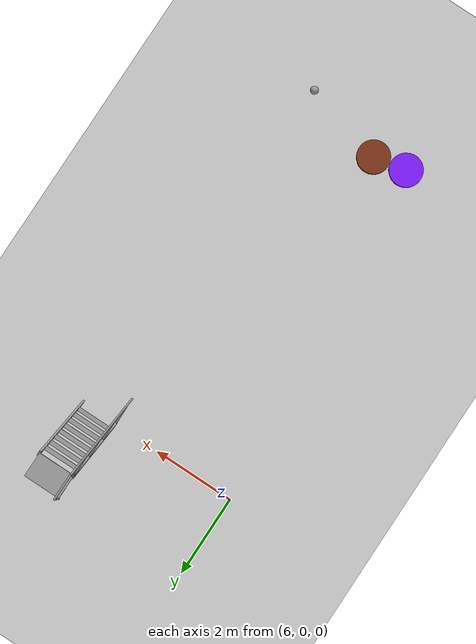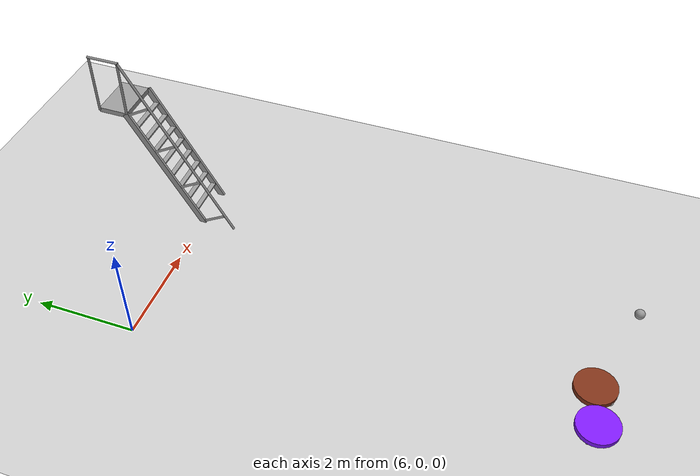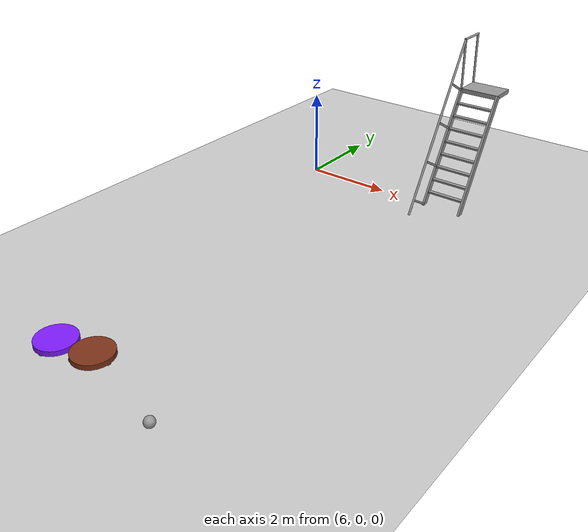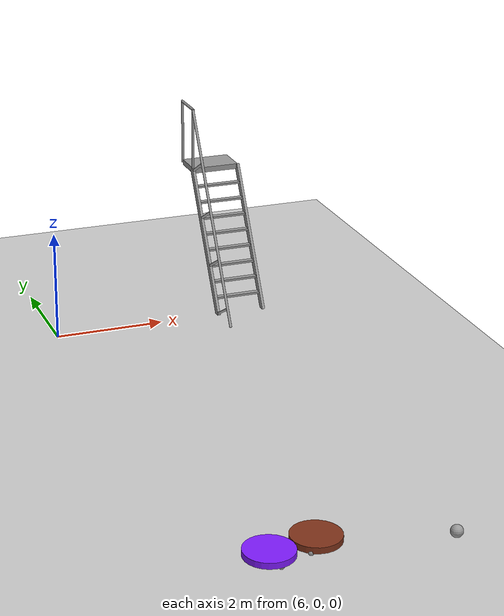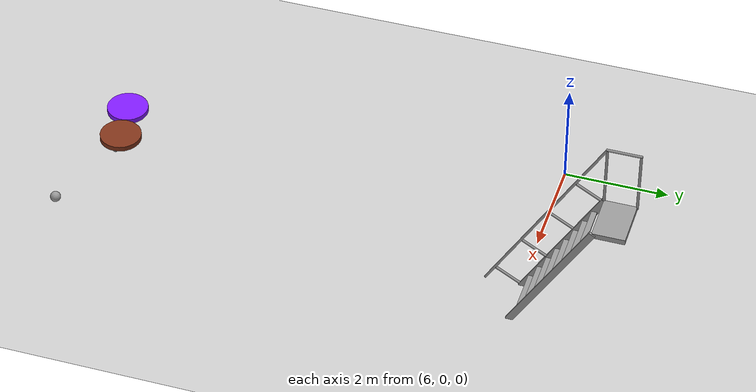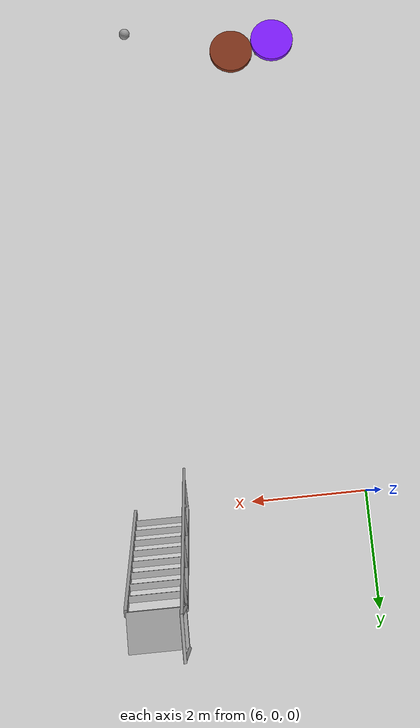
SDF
<sdf version="1.6">
 <world name="default">
  <model name="ground_plane">
   <static>1</static>
   <link name="link">
    <collision name="collision">
     <geometry><plane><normal>0 0 1</normal><size>100 100</size></plane></geometry>
     <surface><friction><ode><mu>100</mu><mu2>50</mu2></ode></friction></surface>
    </collision>
    <visual name="visual">
     <cast_shadows>0</cast_shadows>
     <geometry><plane><normal>0 0 1</normal><size>100 100</size></plane></geometry>
     <material>
      <script><uri>file://media/materials/scripts/gazebo.material</uri><name>Gazebo/Grey</name></script>
     </material>
    </visual>
   </link>
  </model>
  <model name="myrobot">
   <link name="link_0">
    <pose>-0.004537 0.01028 0.0375 0 -0 0</pose>
    <inertial>
     <mass>1</mass>
     <inertia><ixx>0.145833</ixx><ixy>0</ixy><ixz>0</ixz><iyy>0.145833</iyy><iyz>0</iyz><izz>0.125</izz></inertia>
    </inertial>
    <visual name="visual">
     <geometry><cylinder><radius>0.4</radius><length>0.1</length></cylinder></geometry>
     <material>
      <lighting>1</lighting>
      <script><uri>file://media/materials/scripts/gazebo.material</uri><name>Gazebo/Grey</name></script>
      <ambient>0.8 0.6 0.2 0.8</ambient>
      <diffuse>0.5 0.2 0.1 1</diffuse>
      <specular>0.01 0.01 0.01 1</specular>
      <emissive>0 0 0 1</emissive>
      <shader type="vertex"><normal_map>__default__</normal_map></shader>
     </material>
    </visual>
    <collision name="collision">
     <geometry><cylinder><radius>0.4</radius><length>0.1</length></cylinder></geometry>
     <surface>
      <friction>
       <ode><mu>1</mu><mu2>1</mu2><fdir1>0 0 0</fdir1><slip1>0</slip1><slip2>0</slip2></ode>
       <torsional>
        <coefficient>1</coefficient>
        <patch_radius>0</patch_radius>
        <surface_radius>0</surface_radius>
        <use_patch_radius>1</use_patch_radius>
        <ode><slip>0</slip></ode>
       </torsional>
      </friction>
      <bounce><restitution_coefficient>0</restitution_coefficient><threshold>1e+06</threshold></bounce>
      <contact>
       <collide_without_contact>0</collide_without_contact>
       <collide_without_contact_bitmask>1</collide_without_contact_bitmask>
       <collide_bitmask>1</collide_bitmask>
       <ode>
        <soft_cfm>0</soft_cfm>
        <soft_erp>0.2</soft_erp>
        <kp>1e+13</kp>
        <kd>1</kd>
        <max_vel>0.01</max_vel>
        <min_depth>0</min_depth>
       </ode>
       <bullet>
        <split_impulse>1</split_impulse>
        <split_impulse_penetration_threshold>-0.01</split_impulse_penetration_threshold>
        <soft_cfm>0</soft_cfm>
        <soft_erp>0.2</soft_erp>
        <kp>1e+13</kp>
        <kd>1</kd>
       </bullet>
      </contact>
     </surface>
    </collision>
   </link>
   <link name="link_1">
    <pose>-0.004537 -0.329719 -0.0125 0 -0 0</pose>
    <inertial>
     <mass>1</mass>
     <inertia><ixx>0.1</ixx><ixy>0</ixy><ixz>0</ixz><iyy>0.1</iyy><iyz>0</iyz><izz>0.1</izz></inertia>
    </inertial>
    <visual name="visual">
     <geometry><sphere><radius>0.05</radius></sphere></geometry>
     <material>
      <lighting>1</lighting>
      <script><uri>file://media/materials/scripts/gazebo.material</uri><name>Gazebo/Grey</name></script>
      <ambient>0.3 0.3 0.3 1</ambient>
      <diffuse>0.7 0.7 0.7 1</diffuse>
      <specular>0.01 0.01 0.01 1</specular>
      <emissive>0 0 0 1</emissive>
      <shader type="vertex"><normal_map>__default__</normal_map></shader>
     </material>
    </visual>
    <collision name="collision">
     <geometry><sphere><radius>0.05</radius></sphere></geometry>
     <surface>
      <friction>
       <ode><mu>1</mu><mu2>1</mu2><fdir1>0 0 0</fdir1><slip1>0</slip1><slip2>0</slip2></ode>
       <torsional>
        <coefficient>1</coefficient>
        <patch_radius>0</patch_radius>
        <surface_radius>0</surface_radius>
        <use_patch_radius>1</use_patch_radius>
        <ode><slip>0</slip></ode>
       </torsional>
      </friction>
      <bounce><restitution_coefficient>0</restitution_coefficient><threshold>1e+06</threshold></bounce>
      <contact>
       <collide_without_contact>0</collide_without_contact>
       <collide_without_contact_bitmask>1</collide_without_contact_bitmask>
       <collide_bitmask>1</collide_bitmask>
       <ode>
        <soft_cfm>0</soft_cfm>
        <soft_erp>0.2</soft_erp>
        <kp>1e+13</kp>
        <kd>1</kd>
        <max_vel>0.01</max_vel>
        <min_depth>0</min_depth>
       </ode>
       <bullet>
        <split_impulse>1</split_impulse>
        <split_impulse_penetration_threshold>-0.01</split_impulse_penetration_threshold>
        <soft_cfm>0</soft_cfm>
        <soft_erp>0.2</soft_erp>
        <kp>1e+13</kp>
        <kd>1</kd>
       </bullet>
      </contact>
     </surface>
    </collision>
   </link>
   <link name="link_1_clone">
    <pose>0.324443 0.160282 -0.0125 0 -0 0</pose>
    <inertial>
     <mass>1</mass>
     <inertia><ixx>0.1</ixx><ixy>0</ixy><ixz>0</ixz><iyy>0.1</iyy><iyz>0</iyz><izz>0.1</izz></inertia>
    </inertial>
    <visual name="visual">
     <geometry><sphere><radius>0.05</radius></sphere></geometry>
     <material>
      <lighting>1</lighting>
      <script><uri>file://media/materials/scripts/gazebo.material</uri><name>Gazebo/Grey</name></script>
      <ambient>0.3 0.3 0.3 1</ambient>
      <diffuse>0.7 0.7 0.7 1</diffuse>
      <specular>0.01 0.01 0.01 1</specular>
      <emissive>0 0 0 1</emissive>
      <shader type="vertex"><normal_map>__default__</normal_map></shader>
     </material>
    </visual>
    <collision name="collision">
     <geometry><sphere><radius>0.05</radius></sphere></geometry>
     <surface>
      <friction>
       <ode><mu>1</mu><mu2>1</mu2><fdir1>0 0 0</fdir1><slip1>0</slip1><slip2>0</slip2></ode>
       <torsional>
        <coefficient>1</coefficient>
        <patch_radius>0</patch_radius>
        <surface_radius>0</surface_radius>
        <use_patch_radius>1</use_patch_radius>
        <ode><slip>0</slip></ode>
       </torsional>
      </friction>
      <bounce><restitution_coefficient>0</restitution_coefficient><threshold>1e+06</threshold></bounce>
      <contact>
       <collide_without_contact>0</collide_without_contact>
       <collide_without_contact_bitmask>1</collide_without_contact_bitmask>
       <collide_bitmask>1</collide_bitmask>
       <ode>
        <soft_cfm>0</soft_cfm>
        <soft_erp>0.2</soft_erp>
        <kp>1e+13</kp>
        <kd>1</kd>
        <max_vel>0.01</max_vel>
        <min_depth>0</min_depth>
       </ode>
       <bullet>
        <split_impulse>1</split_impulse>
        <split_impulse_penetration_threshold>-0.01</split_impulse_penetration_threshold>
        <soft_cfm>0</soft_cfm>
        <soft_erp>0.2</soft_erp>
        <kp>1e+13</kp>
        <kd>1</kd>
       </bullet>
      </contact>
     </surface>
    </collision>
   </link>
   <link name="link_1_clone_clone">
    <pose>-0.315368 0.169158 -0.0125 0 -0 0</pose>
    <inertial>
     <mass>1</mass>
     <inertia><ixx>0.1</ixx><ixy>0</ixy><ixz>0</ixz><iyy>0.1</iyy><iyz>0</iyz><izz>0.1</izz></inertia>
    </inertial>
    <visual name="visual">
     <geometry><sphere><radius>0.05</radius></sphere></geometry>
     <material>
      <lighting>1</lighting>
      <script><uri>file://media/materials/scripts/gazebo.material</uri><name>Gazebo/Grey</name></script>
      <ambient>0.3 0.3 0.3 1</ambient>
      <diffuse>0.7 0.7 0.7 1</diffuse>
      <specular>0.01 0.01 0.01 1</specular>
      <emissive>0 0 0 1</emissive>
      <shader type="vertex"><normal_map>__default__</normal_map></shader>
     </material>
    </visual>
    <collision name="collision">
     <geometry><sphere><radius>0.05</radius></sphere></geometry>
     <surface>
      <friction>
       <ode><mu>1</mu><mu2>1</mu2><fdir1>0 0 0</fdir1><slip1>0</slip1><slip2>0</slip2></ode>
       <torsional>
        <coefficient>1</coefficient>
        <patch_radius>0</patch_radius>
        <surface_radius>0</surface_radius>
        <use_patch_radius>1</use_patch_radius>
        <ode><slip>0</slip></ode>
       </torsional>
      </friction>
      <bounce><restitution_coefficient>0</restitution_coefficient><threshold>1e+06</threshold></bounce>
      <contact>
       <collide_without_contact>0</collide_without_contact>
       <collide_without_contact_bitmask>1</collide_without_contact_bitmask>
       <collide_bitmask>1</collide_bitmask>
       <ode>
        <soft_cfm>0</soft_cfm>
        <soft_erp>0.2</soft_erp>
        <kp>1e+13</kp>
        <kd>1</kd>
        <max_vel>0.01</max_vel>
        <min_depth>0</min_depth>
       </ode>
       <bullet>
        <split_impulse>1</split_impulse>
        <split_impulse_penetration_threshold>-0.01</split_impulse_penetration_threshold>
        <soft_cfm>0</soft_cfm>
        <soft_erp>0.2</soft_erp>
        <kp>1e+13</kp>
        <kd>1</kd>
       </bullet>
      </contact>
     </surface>
    </collision>
   </link>
   <joint name="link_0_JOINT_0" type="ball">
    <parent>link_0</parent>
    <child>link_1</child>
    <physics>
     <ode><limit><cfm>0</cfm><erp>0.2</erp></limit><suspension><cfm>0</cfm><erp>0.2</erp></suspension></ode>
    </physics>
   </joint>
   <joint name="link_0_JOINT_1" type="ball">
    <parent>link_0</parent>
    <child>link_1_clone</child>
    <physics>
     <ode><limit><cfm>0</cfm><erp>0.2</erp></limit><suspension><cfm>0</cfm><erp>0.2</erp></suspension></ode>
    </physics>
   </joint>
   <joint name="link_0_JOINT_2" type="ball">
    <parent>link_0</parent>
    <child>link_1_clone_clone</child>
    <physics>
     <ode><limit><cfm>0</cfm><erp>0.2</erp></limit><suspension><cfm>0</cfm><erp>0.2</erp></suspension></ode>
    </physics>
   </joint>
   <static>0</static>
   <pose>7.57179 -8.35948 0.0625 0 0 -2.58755</pose>
  </model>
  <model name="myrobot_0">
   <link name="link_0">
    <pose>-0.004537 0.01028 0.0375 0 -0 0</pose>
    <inertial>
     <mass>1</mass>
     <inertia><ixx>0.145833</ixx><ixy>0</ixy><ixz>0</ixz><iyy>0.145833</iyy><iyz>0</iyz><izz>0.125</izz></inertia>
    </inertial>
    <visual name="visual">
     <geometry><cylinder><radius>0.4</radius><length>0.1</length></cylinder></geometry>
     <material>
      <lighting>1</lighting>
      <script><uri>file://media/materials/scripts/gazebo.material</uri><name>Gazebo/Grey</name></script>
      <ambient>0.5 0.1 1 1</ambient>
      <diffuse>0.7 0.7 0.7 1</diffuse>
      <specular>0.01 0.01 0.01 1</specular>
      <emissive>0 0 0 1</emissive>
      <shader type="vertex"><normal_map>__default__</normal_map></shader>
     </material>
    </visual>
    <collision name="collision">
     <geometry><cylinder><radius>0.4</radius><length>0.1</length></cylinder></geometry>
     <surface>
      <friction>
       <ode><mu>1</mu><mu2>1</mu2><fdir1>0 0 0</fdir1><slip1>0</slip1><slip2>0</slip2></ode>
       <torsional>
        <coefficient>1</coefficient>
        <patch_radius>0</patch_radius>
        <surface_radius>0</surface_radius>
        <use_patch_radius>1</use_patch_radius>
        <ode><slip>0</slip></ode>
       </torsional>
      </friction>
      <bounce><restitution_coefficient>0</restitution_coefficient><threshold>1e+06</threshold></bounce>
      <contact>
       <collide_without_contact>0</collide_without_contact>
       <collide_without_contact_bitmask>1</collide_without_contact_bitmask>
       <collide_bitmask>1</collide_bitmask>
       <ode>
        <soft_cfm>0</soft_cfm>
        <soft_erp>0.2</soft_erp>
        <kp>1e+13</kp>
        <kd>1</kd>
        <max_vel>0.01</max_vel>
        <min_depth>0</min_depth>
       </ode>
       <bullet>
        <split_impulse>1</split_impulse>
        <split_impulse_penetration_threshold>-0.01</split_impulse_penetration_threshold>
        <soft_cfm>0</soft_cfm>
        <soft_erp>0.2</soft_erp>
        <kp>1e+13</kp>
        <kd>1</kd>
       </bullet>
      </contact>
     </surface>
    </collision>
   </link>
   <link name="link_1">
    <pose>-0.004537 -0.339719 -0.0125 0 -0 0</pose>
    <inertial>
     <mass>1</mass>
     <inertia><ixx>0.1</ixx><ixy>0</ixy><ixz>0</ixz><iyy>0.1</iyy><iyz>0</iyz><izz>0.1</izz></inertia>
    </inertial>
    <visual name="visual">
     <geometry><sphere><radius>0.05</radius></sphere></geometry>
     <material>
      <lighting>1</lighting>
      <script><uri>file://media/materials/scripts/gazebo.material</uri><name>Gazebo/Grey</name></script>
      <ambient>0.3 0.3 0.3 1</ambient>
      <diffuse>0.7 0.7 0.7 1</diffuse>
      <specular>0.01 0.01 0.01 1</specular>
      <emissive>0 0 0 1</emissive>
      <shader type="vertex"><normal_map>__default__</normal_map></shader>
     </material>
    </visual>
    <collision name="collision">
     <geometry><sphere><radius>0.05</radius></sphere></geometry>
     <surface>
      <friction>
       <ode><mu>1</mu><mu2>1</mu2><fdir1>0 0 0</fdir1><slip1>0</slip1><slip2>0</slip2></ode>
       <torsional>
        <coefficient>1</coefficient>
        <patch_radius>0</patch_radius>
        <surface_radius>0</surface_radius>
        <use_patch_radius>1</use_patch_radius>
        <ode><slip>0</slip></ode>
       </torsional>
      </friction>
      <bounce><restitution_coefficient>0</restitution_coefficient><threshold>1e+06</threshold></bounce>
      <contact>
       <collide_without_contact>0</collide_without_contact>
       <collide_without_contact_bitmask>1</collide_without_contact_bitmask>
       <collide_bitmask>1</collide_bitmask>
       <ode>
        <soft_cfm>0</soft_cfm>
        <soft_erp>0.2</soft_erp>
        <kp>1e+13</kp>
        <kd>1</kd>
        <max_vel>0.01</max_vel>
        <min_depth>0</min_depth>
       </ode>
       <bullet>
        <split_impulse>1</split_impulse>
        <split_impulse_penetration_threshold>-0.01</split_impulse_penetration_threshold>
        <soft_cfm>0</soft_cfm>
        <soft_erp>0.2</soft_erp>
        <kp>1e+13</kp>
        <kd>1</kd>
       </bullet>
      </contact>
     </surface>
    </collision>
   </link>
   <link name="link_1_clone">
    <pose>0.324443 0.160282 -0.0125 0 -0 0</pose>
    <inertial>
     <mass>1</mass>
     <inertia><ixx>0.1</ixx><ixy>0</ixy><ixz>0</ixz><iyy>0.1</iyy><iyz>0</iyz><izz>0.1</izz></inertia>
    </inertial>
    <visual name="visual">
     <geometry><sphere><radius>0.05</radius></sphere></geometry>
     <material>
      <lighting>1</lighting>
      <script><uri>file://media/materials/scripts/gazebo.material</uri><name>Gazebo/Grey</name></script>
      <ambient>0.3 0.3 0.3 1</ambient>
      <diffuse>0.7 0.7 0.7 1</diffuse>
      <specular>0.01 0.01 0.01 1</specular>
      <emissive>0 0 0 1</emissive>
      <shader type="vertex"><normal_map>__default__</normal_map></shader>
     </material>
    </visual>
    <collision name="collision">
     <geometry><sphere><radius>0.05</radius></sphere></geometry>
     <surface>
      <friction>
       <ode><mu>1</mu><mu2>1</mu2><fdir1>0 0 0</fdir1><slip1>0</slip1><slip2>0</slip2></ode>
       <torsional>
        <coefficient>1</coefficient>
        <patch_radius>0</patch_radius>
        <surface_radius>0</surface_radius>
        <use_patch_radius>1</use_patch_radius>
        <ode><slip>0</slip></ode>
       </torsional>
      </friction>
      <bounce><restitution_coefficient>0</restitution_coefficient><threshold>1e+06</threshold></bounce>
      <contact>
       <collide_without_contact>0</collide_without_contact>
       <collide_without_contact_bitmask>1</collide_without_contact_bitmask>
       <collide_bitmask>1</collide_bitmask>
       <ode>
        <soft_cfm>0</soft_cfm>
        <soft_erp>0.2</soft_erp>
        <kp>1e+13</kp>
        <kd>1</kd>
        <max_vel>0.01</max_vel>
        <min_depth>0</min_depth>
       </ode>
       <bullet>
        <split_impulse>1</split_impulse>
        <split_impulse_penetration_threshold>-0.01</split_impulse_penetration_threshold>
        <soft_cfm>0</soft_cfm>
        <soft_erp>0.2</soft_erp>
        <kp>1e+13</kp>
        <kd>1</kd>
       </bullet>
      </contact>
     </surface>
    </collision>
   </link>
   <link name="link_1_clone_clone">
    <pose>-0.315368 0.169158 -0.0125 0 -0 0</pose>
    <inertial>
     <mass>1</mass>
     <inertia><ixx>0.1</ixx><ixy>0</ixy><ixz>0</ixz><iyy>0.1</iyy><iyz>0</iyz><izz>0.1</izz></inertia>
    </inertial>
    <visual name="visual">
     <geometry><sphere><radius>0.05</radius></sphere></geometry>
     <material>
      <lighting>1</lighting>
      <script><uri>file://media/materials/scripts/gazebo.material</uri><name>Gazebo/Grey</name></script>
      <ambient>0.3 0.3 0.3 1</ambient>
      <diffuse>0.7 0.7 0.7 1</diffuse>
      <specular>0.01 0.01 0.01 1</specular>
      <emissive>0 0 0 1</emissive>
      <shader type="vertex"><normal_map>__default__</normal_map></shader>
     </material>
    </visual>
    <collision name="collision">
     <geometry><sphere><radius>0.05</radius></sphere></geometry>
     <surface>
      <friction>
       <ode><mu>1</mu><mu2>1</mu2><fdir1>0 0 0</fdir1><slip1>0</slip1><slip2>0</slip2></ode>
       <torsional>
        <coefficient>1</coefficient>
        <patch_radius>0</patch_radius>
        <surface_radius>0</surface_radius>
        <use_patch_radius>1</use_patch_radius>
        <ode><slip>0</slip></ode>
       </torsional>
      </friction>
      <bounce><restitution_coefficient>0</restitution_coefficient><threshold>1e+06</threshold></bounce>
      <contact>
       <collide_without_contact>0</collide_without_contact>
       <collide_without_contact_bitmask>1</collide_without_contact_bitmask>
       <collide_bitmask>1</collide_bitmask>
       <ode>
        <soft_cfm>0</soft_cfm>
        <soft_erp>0.2</soft_erp>
        <kp>1e+13</kp>
        <kd>1</kd>
        <max_vel>0.01</max_vel>
        <min_depth>0</min_depth>
       </ode>
       <bullet>
        <split_impulse>1</split_impulse>
        <split_impulse_penetration_threshold>-0.01</split_impulse_penetration_threshold>
        <soft_cfm>0</soft_cfm>
        <soft_erp>0.2</soft_erp>
        <kp>1e+13</kp>
        <kd>1</kd>
       </bullet>
      </contact>
     </surface>
    </collision>
   </link>
   <joint name="link_0_JOINT_0" type="ball">
    <parent>link_0</parent>
    <child>link_1</child>
    <physics>
     <ode><limit><cfm>0</cfm><erp>0.2</erp></limit><suspension><cfm>0</cfm><erp>0.2</erp></suspension></ode>
    </physics>
   </joint>
   <joint name="link_0_JOINT_1" type="ball">
    <parent>link_0</parent>
    <child>link_1_clone</child>
    <physics>
     <ode><limit><cfm>0</cfm><erp>0.2</erp></limit><suspension><cfm>0</cfm><erp>0.2</erp></suspension></ode>
    </physics>
   </joint>
   <joint name="link_0_JOINT_2" type="ball">
    <parent>link_0</parent>
    <child>link_1_clone_clone</child>
    <physics>
     <ode><limit><cfm>0</cfm><erp>0.2</erp></limit><suspension><cfm>0</cfm><erp>0.2</erp></suspension></ode>
    </physics>
   </joint>
   <static>0</static>
   <pose>6.79758 -8.53146 0.0625 0 -0 0.148532</pose>
  </model>
  <model name="my_ball">
   <link name="link_0">
    <inertial>
     <mass>1</mass>
     <inertia><ixx>0.1</ixx><ixy>0</ixy><ixz>0</ixz><iyy>0.1</iyy><iyz>0</iyz><izz>0.1</izz></inertia>
    </inertial>
    <visual name="visual">
     <geometry><sphere><radius>0.1</radius></sphere></geometry>
     <material>
      <lighting>1</lighting>
      <script><uri>file://media/materials/scripts/gazebo.material</uri><name>Gazebo/Grey</name></script>
      <shader type="pixel"><normal_map>__default__</normal_map></shader>
      <ambient>1 1 1 1</ambient>
      <diffuse>1 1 1 1</diffuse>
      <specular>0.01 0.01 0.01 1</specular>
      <emissive>1 1 1 1</emissive>
     </material>
    </visual>
    <collision name="collision">
     <geometry><sphere><radius>0.1</radius></sphere></geometry>
     <surface>
      <friction>
       <ode><mu>1</mu><mu2>1</mu2><fdir1>0 0 0</fdir1><slip1>0</slip1><slip2>0</slip2></ode>
       <torsional>
        <coefficient>1</coefficient>
        <patch_radius>0</patch_radius>
        <surface_radius>0</surface_radius>
        <use_patch_radius>1</use_patch_radius>
        <ode><slip>0</slip></ode>
       </torsional>
      </friction>
      <bounce><restitution_coefficient>0</restitution_coefficient><threshold>1e+06</threshold></bounce>
      <contact>
       <collide_without_contact>0</collide_without_contact>
       <collide_without_contact_bitmask>1</collide_without_contact_bitmask>
       <collide_bitmask>1</collide_bitmask>
       <ode>
        <soft_cfm>0</soft_cfm>
        <soft_erp>0.2</soft_erp>
        <kp>1e+13</kp>
        <kd>1</kd>
        <max_vel>0.01</max_vel>
        <min_depth>0</min_depth>
       </ode>
       <bullet>
        <split_impulse>1</split_impulse>
        <split_impulse_penetration_threshold>-0.01</split_impulse_penetration_threshold>
        <soft_cfm>0</soft_cfm>
        <soft_erp>0.2</soft_erp>
        <kp>1e+13</kp>
        <kd>1</kd>
       </bullet>
      </contact>
     </surface>
    </collision>
   </link>
   <static>0</static>
   <pose>9.56433 -8.91099 0.1 0 -0 0</pose>
  </model>
  <model name="ladder_60deg_1rails">
   <static>1</static>
   <link name="step0">
    <pose>0 0.15396 0.266667 0 -0 0</pose>
    <inertial>
     <mass>9.75482</mass>
     <inertia>
      <ixx>0.00957124</ixx>
      <iyy>0.65963</iyy>
      <izz>0.666842</izz>
      <ixy>0</ixy>
      <ixz>0</ixz>
      <iyz>0</iyz>
     </inertia>
    </inertial>
    <collision name="collision"><geometry><box><size>0.9 0.1016 0.0381</size></box></geometry></collision>
    <visual name="visual">
     <geometry><box><size>0.9 0.1016 0.0381</size></box></geometry>
     <material>
      <script><uri>file://media/materials/scripts/gazebo.material</uri><name>Gazebo/Grey</name></script>
     </material>
    </visual>
   </link>
   <link name="step1">
    <pose>0 0.30792 0.533333 0 -0 0</pose>
    <inertial>
     <mass>9.75482</mass>
     <inertia>
      <ixx>0.00957124</ixx>
      <iyy>0.65963</iyy>
      <izz>0.666842</izz>
      <ixy>0</ixy>
      <ixz>0</ixz>
      <iyz>0</iyz>
     </inertia>
    </inertial>
    <collision name="collision"><geometry><box><size>0.9 0.1016 0.0381</size></box></geometry></collision>
    <visual name="visual">
     <geometry><box><size>0.9 0.1016 0.0381</size></box></geometry>
     <material>
      <script><uri>file://media/materials/scripts/gazebo.material</uri><name>Gazebo/Grey</name></script>
     </material>
    </visual>
   </link>
   <link name="step2">
    <pose>0 0.46188 0.8 0 -0 0</pose>
    <inertial>
     <mass>9.75482</mass>
     <inertia>
      <ixx>0.00957124</ixx>
      <iyy>0.65963</iyy>
      <izz>0.666842</izz>
      <ixy>0</ixy>
      <ixz>0</ixz>
      <iyz>0</iyz>
     </inertia>
    </inertial>
    <collision name="collision"><geometry><box><size>0.9 0.1016 0.0381</size></box></geometry></collision>
    <visual name="visual">
     <geometry><box><size>0.9 0.1016 0.0381</size></box></geometry>
     <material>
      <script><uri>file://media/materials/scripts/gazebo.material</uri><name>Gazebo/Grey</name></script>
     </material>
    </visual>
   </link>
   <link name="step3">
    <pose>0 0.61584 1.06667 0 -0 0</pose>
    <inertial>
     <mass>9.75482</mass>
     <inertia>
      <ixx>0.00957124</ixx>
      <iyy>0.65963</iyy>
      <izz>0.666842</izz>
      <ixy>0</ixy>
      <ixz>0</ixz>
      <iyz>0</iyz>
     </inertia>
    </inertial>
    <collision name="collision"><geometry><box><size>0.9 0.1016 0.0381</size></box></geometry></collision>
    <visual name="visual">
     <geometry><box><size>0.9 0.1016 0.0381</size></box></geometry>
     <material>
      <script><uri>file://media/materials/scripts/gazebo.material</uri><name>Gazebo/Grey</name></script>
     </material>
    </visual>
   </link>
   <link name="step4">
    <pose>0 0.7698 1.33333 0 -0 0</pose>
    <inertial>
     <mass>9.75482</mass>
     <inertia>
      <ixx>0.00957124</ixx>
      <iyy>0.65963</iyy>
      <izz>0.666842</izz>
      <ixy>0</ixy>
      <ixz>0</ixz>
      <iyz>0</iyz>
     </inertia>
    </inertial>
    <collision name="collision"><geometry><box><size>0.9 0.1016 0.0381</size></box></geometry></collision>
    <visual name="visual">
     <geometry><box><size>0.9 0.1016 0.0381</size></box></geometry>
     <material>
      <script><uri>file://media/materials/scripts/gazebo.material</uri><name>Gazebo/Grey</name></script>
     </material>
    </visual>
   </link>
   <link name="step5">
    <pose>0 0.92376 1.6 0 -0 0</pose>
    <inertial>
     <mass>9.75482</mass>
     <inertia>
      <ixx>0.00957124</ixx>
      <iyy>0.65963</iyy>
      <izz>0.666842</izz>
      <ixy>0</ixy>
      <ixz>0</ixz>
      <iyz>0</iyz>
     </inertia>
    </inertial>
    <collision name="collision"><geometry><box><size>0.9 0.1016 0.0381</size></box></geometry></collision>
    <visual name="visual">
     <geometry><box><size>0.9 0.1016 0.0381</size></box></geometry>
     <material>
      <script><uri>file://media/materials/scripts/gazebo.material</uri><name>Gazebo/Grey</name></script>
     </material>
    </visual>
   </link>
   <link name="step6">
    <pose>0 1.07772 1.86667 0 -0 0</pose>
    <inertial>
     <mass>9.75482</mass>
     <inertia>
      <ixx>0.00957124</ixx>
      <iyy>0.65963</iyy>
      <izz>0.666842</izz>
      <ixy>0</ixy>
      <ixz>0</ixz>
      <iyz>0</iyz>
     </inertia>
    </inertial>
    <collision name="collision"><geometry><box><size>0.9 0.1016 0.0381</size></box></geometry></collision>
    <visual name="visual">
     <geometry><box><size>0.9 0.1016 0.0381</size></box></geometry>
     <material>
      <script><uri>file://media/materials/scripts/gazebo.material</uri><name>Gazebo/Grey</name></script>
     </material>
    </visual>
   </link>
   <link name="step7">
    <pose>0 1.23168 2.13333 0 -0 0</pose>
    <inertial>
     <mass>9.75482</mass>
     <inertia>
      <ixx>0.00957124</ixx>
      <iyy>0.65963</iyy>
      <izz>0.666842</izz>
      <ixy>0</ixy>
      <ixz>0</ixz>
      <iyz>0</iyz>
     </inertia>
    </inertial>
    <collision name="collision"><geometry><box><size>0.9 0.1016 0.0381</size></box></geometry></collision>
    <visual name="visual">
     <geometry><box><size>0.9 0.1016 0.0381</size></box></geometry>
     <material>
      <script><uri>file://media/materials/scripts/gazebo.material</uri><name>Gazebo/Grey</name></script>
     </material>
    </visual>
   </link>
   <link name="landing">
    <pose>0 1.68564 2.4 0 -0 0</pose>
    <inertial>
     <mass>57.6072</mass>
     <inertia><ixx>1.73518</ixx><iyy>3.89545</iyy><izz>5.6167</izz><ixy>0</ixy><ixz>0</ixz><iyz>0</iyz></inertia>
    </inertial>
    <collision name="collision"><geometry><box><size>0.9 0.6 0.1016</size></box></geometry></collision>
    <visual name="visual">
     <geometry><box><size>0.9 0.6 0.1016</size></box></geometry>
     <material>
      <script><uri>file://media/materials/scripts/gazebo.material</uri><name>Gazebo/Grey</name></script>
     </material>
    </visual>
   </link>
   <link name="left_side_wall">
    <pose>-0.45 0.69282 1.2 1.0472 -0 0</pose>
    <collision name="collision"><geometry><box><size>0.0508 2.85128 0.13</size></box></geometry></collision>
    <visual name="visual">
     <geometry><box><size>0.0508 2.85128 0.13</size></box></geometry>
     <material>
      <script><uri>file://media/materials/scripts/gazebo.material</uri><name>Gazebo/Grey</name></script>
     </material>
    </visual>
   </link>
   <link name="right_side_wall">
    <pose>0.45 0.69282 1.2 1.0472 -0 0</pose>
    <collision name="collision"><geometry><box><size>0.0508 2.85128 0.13</size></box></geometry></collision>
    <visual name="visual">
     <geometry><box><size>0.0508 2.85128 0.13</size></box></geometry>
     <material>
      <script><uri>file://media/materials/scripts/gazebo.material</uri><name>Gazebo/Grey</name></script>
     </material>
    </visual>
   </link>
   <link name="left_railing_long">
    <pose>-0.45 0.34282 1.80622 -0.523599 0 0</pose>
    <collision name="collision">
     <geometry><cylinder><radius>0.02413</radius><length>4.17128</length></cylinder></geometry>
    </collision>
    <visual name="visual">
     <geometry><cylinder><radius>0.02413</radius><length>4.17128</length></cylinder></geometry>
     <material>
      <script><uri>file://media/materials/scripts/gazebo.material</uri><name>Gazebo/Grey</name></script>
     </material>
    </visual>
   </link>
   <link name="left_railing_upright0">
    <pose>-0.45 -0.274963 0.15875 1.0472 -0 0</pose>
    <collision name="collision">
     <geometry><cylinder><radius>0.02413</radius><length>0.541218</length></cylinder></geometry>
    </collision>
    <visual name="visual">
     <geometry><cylinder><radius>0.02413</radius><length>0.541218</length></cylinder></geometry>
     <material>
      <script><uri>file://media/materials/scripts/gazebo.material</uri><name>Gazebo/Grey</name></script>
     </material>
    </visual>
   </link>
   <link name="left_railing_upright1">
    <pose>-0.45 0.186917 0.95875 1.0472 -0 0</pose>
    <collision name="collision">
     <geometry><cylinder><radius>0.02413</radius><length>0.541218</length></cylinder></geometry>
    </collision>
    <visual name="visual">
     <geometry><cylinder><radius>0.02413</radius><length>0.541218</length></cylinder></geometry>
     <material>
      <script><uri>file://media/materials/scripts/gazebo.material</uri><name>Gazebo/Grey</name></script>
     </material>
    </visual>
   </link>
   <link name="left_railing_upright2">
    <pose>-0.45 0.648797 1.75875 1.0472 -0 0</pose>
    <collision name="collision">
     <geometry><cylinder><radius>0.02413</radius><length>0.541218</length></cylinder></geometry>
    </collision>
    <visual name="visual">
     <geometry><cylinder><radius>0.02413</radius><length>0.541218</length></cylinder></geometry>
     <material>
      <script><uri>file://media/materials/scripts/gazebo.material</uri><name>Gazebo/Grey</name></script>
     </material>
    </visual>
   </link>
   <link name="left_railing_upright3">
    <pose>-0.45 1.11068 2.55875 1.0472 -0 0</pose>
    <collision name="collision">
     <geometry><cylinder><radius>0.02413</radius><length>0.541218</length></cylinder></geometry>
    </collision>
    <visual name="visual">
     <geometry><cylinder><radius>0.02413</radius><length>0.541218</length></cylinder></geometry>
     <material>
      <script><uri>file://media/materials/scripts/gazebo.material</uri><name>Gazebo/Grey</name></script>
     </material>
    </visual>
   </link>
   <link name="left_railing_landing_top">
    <pose>-0.45 1.68564 3.61244 1.5708 -0 0</pose>
    <collision name="collision">
     <geometry><cylinder><radius>0.02413</radius><length>0.64826</length></cylinder></geometry>
    </collision>
    <visual name="visual">
     <geometry><cylinder><radius>0.02413</radius><length>0.64826</length></cylinder></geometry>
     <material>
      <script><uri>file://media/materials/scripts/gazebo.material</uri><name>Gazebo/Grey</name></script>
     </material>
    </visual>
   </link>
   <link name="left_railing_landing_upright_0">
    <pose>-0.45 1.38564 3.00622 0 -0 0</pose>
    <collision name="collision">
     <geometry><cylinder><radius>0.02413</radius><length>1.21244</length></cylinder></geometry>
    </collision>
    <visual name="visual">
     <geometry><cylinder><radius>0.02413</radius><length>1.21244</length></cylinder></geometry>
     <material>
      <script><uri>file://media/materials/scripts/gazebo.material</uri><name>Gazebo/Grey</name></script>
     </material>
    </visual>
   </link>
   <link name="left_railing_landing_upright_1">
    <pose>-0.45 1.98564 3.00622 0 -0 0</pose>
    <collision name="collision">
     <geometry><cylinder><radius>0.02413</radius><length>1.21244</length></cylinder></geometry>
    </collision>
    <visual name="visual">
     <geometry><cylinder><radius>0.02413</radius><length>1.21244</length></cylinder></geometry>
     <material>
      <script><uri>file://media/materials/scripts/gazebo.material</uri><name>Gazebo/Grey</name></script>
     </material>
    </visual>
   </link>
   <pose>9.58424 0.02417 0 0 -0 0</pose>
  </model>
 </world>
</sdf>
